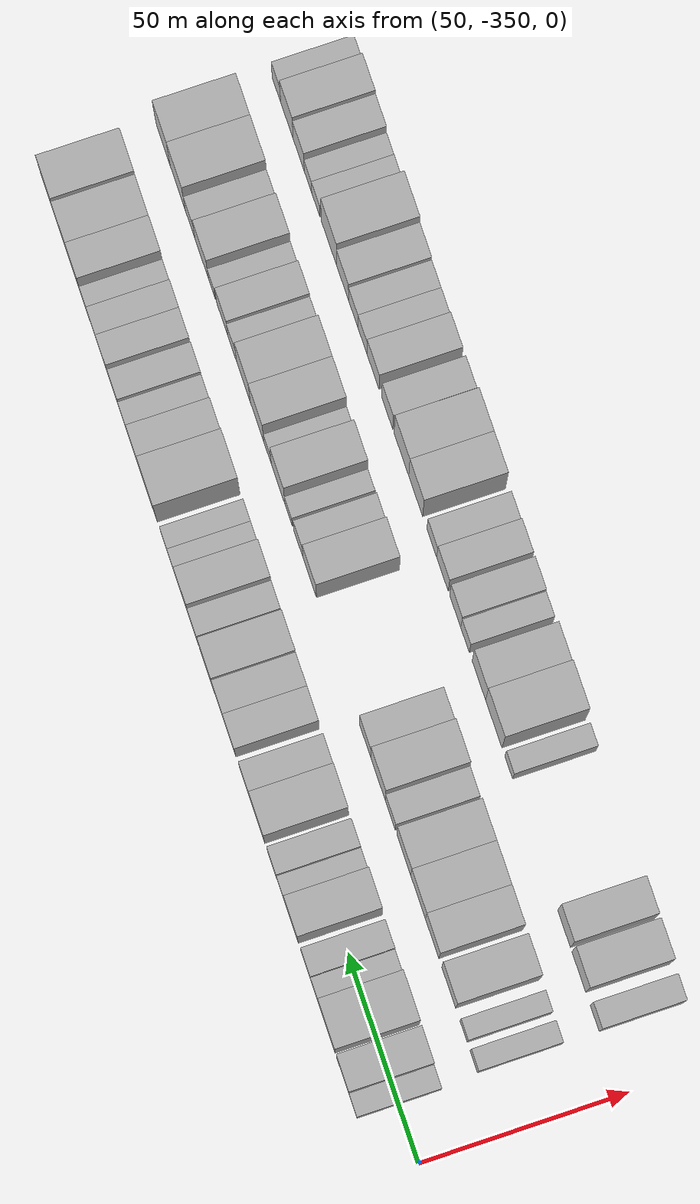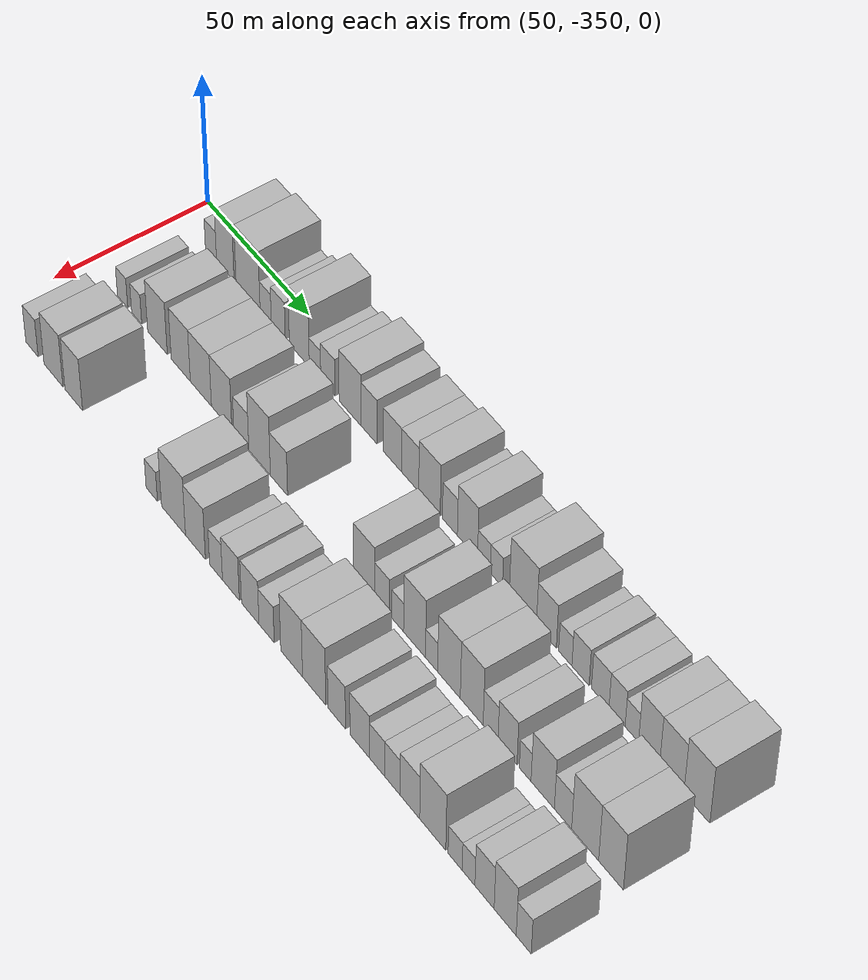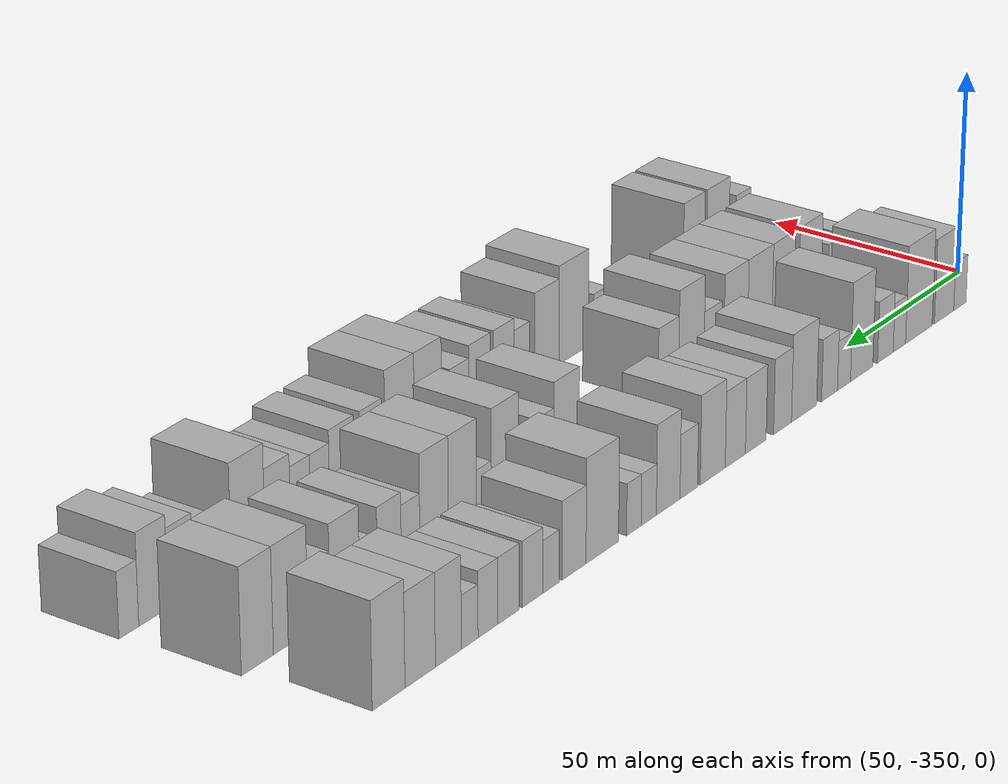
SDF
<sdf version="1.6">
 <world name="default">
  <model name="building_1">
   <static>1</static>
   <pose>50.0000 -333.1980 0 0.000000 0.000000 0.000000</pose>
   <link name="link">
    <pose>0 0 6.00 0 0 0</pose>
    <collision name="collision"><geometry><box><size>20.0000 5.6040 12.0000</size></box></geometry></collision>
    <visual name="visual">
     <cast_shadows>0</cast_shadows>
     <geometry><box><size>20.0000 5.6040 12.0000</size></box></geometry>
     <material>
      <script>
       <uri>model://HANNAS_wall/materials/scripts</uri>
       <uri>model://HANNAS_wall/materials/textures</uri>
       <name>vrc/HANNAS_wall</name>
      </script>
     </material>
    </visual>
   </link>
  </model>
  <model name="building_2">
   <static>1</static>
   <pose>50.0000 -325.9959 0 0.000000 0.000000 0.000000</pose>
   <link name="link">
    <pose>0 0 10.50 0 0 0</pose>
    <collision name="collision"><geometry><box><size>20.0000 8.8002 21.0000</size></box></geometry></collision>
    <visual name="visual">
     <cast_shadows>0</cast_shadows>
     <geometry><box><size>20.0000 8.8002 21.0000</size></box></geometry>
     <material>
      <script>
       <uri>model://HANNAS_wall/materials/scripts</uri>
       <uri>model://HANNAS_wall/materials/textures</uri>
       <name>vrc/HANNAS_wall</name>
      </script>
     </material>
    </visual>
   </link>
  </model>
  <model name="building_3">
   <static>1</static>
   <pose>50.0000 -314.6749 0 0.000000 0.000000 0.000000</pose>
   <link name="link">
    <pose>0 0 12.00 0 0 0</pose>
    <collision name="collision"><geometry><box><size>20.0000 11.8418 24.0000</size></box></geometry></collision>
    <visual name="visual">
     <cast_shadows>0</cast_shadows>
     <geometry><box><size>20.0000 11.8418 24.0000</size></box></geometry>
     <material>
      <script>
       <uri>model://HANNAS_wall/materials/scripts</uri>
       <uri>model://HANNAS_wall/materials/textures</uri>
       <name>vrc/HANNAS_wall</name>
      </script>
     </material>
    </visual>
   </link>
  </model>
  <model name="building_4">
   <static>1</static>
   <pose>50.0000 -306.0042 0 0.000000 0.000000 0.000000</pose>
   <link name="link">
    <pose>0 0 6.00 0 0 0</pose>
    <collision name="collision"><geometry><box><size>20.0000 5.4996 12.0000</size></box></geometry></collision>
    <visual name="visual">
     <cast_shadows>0</cast_shadows>
     <geometry><box><size>20.0000 5.4996 12.0000</size></box></geometry>
     <material>
      <script>
       <uri>model://HANNAS_wall/materials/scripts</uri>
       <uri>model://HANNAS_wall/materials/textures</uri>
       <name>vrc/HANNAS_wall</name>
      </script>
     </material>
    </visual>
   </link>
  </model>
  <model name="building_5">
   <static>1</static>
   <pose>50.0000 -299.8403 0 0.000000 0.000000 0.000000</pose>
   <link name="link">
    <pose>0 0 7.50 0 0 0</pose>
    <collision name="collision"><geometry><box><size>20.0000 6.8281 15.0000</size></box></geometry></collision>
    <visual name="visual">
     <cast_shadows>0</cast_shadows>
     <geometry><box><size>20.0000 6.8281 15.0000</size></box></geometry>
     <material>
      <script>
       <uri>model://HANNAS_wall/materials/scripts</uri>
       <uri>model://HANNAS_wall/materials/textures</uri>
       <name>vrc/HANNAS_wall</name>
      </script>
     </material>
    </visual>
   </link>
  </model>
  <model name="building_6">
   <static>1</static>
   <pose>50.0000 -289.6223 0 0.000000 0.000000 0.000000</pose>
   <link name="link">
    <pose>0 0 12.00 0 0 0</pose>
    <collision name="collision"><geometry><box><size>20.0000 9.6079 24.0000</size></box></geometry></collision>
    <visual name="visual">
     <cast_shadows>0</cast_shadows>
     <geometry><box><size>20.0000 9.6079 24.0000</size></box></geometry>
     <material>
      <script>
       <uri>model://HANNAS_wall/materials/scripts</uri>
       <uri>model://HANNAS_wall/materials/textures</uri>
       <name>vrc/HANNAS_wall</name>
      </script>
     </material>
    </visual>
   </link>
  </model>
  <model name="building_7">
   <static>1</static>
   <pose>50.0000 -282.0489 0 0.000000 0.000000 0.000000</pose>
   <link name="link">
    <pose>0 0 6.00 0 0 0</pose>
    <collision name="collision"><geometry><box><size>20.0000 5.5390 12.0000</size></box></geometry></collision>
    <visual name="visual">
     <cast_shadows>0</cast_shadows>
     <geometry><box><size>20.0000 5.5390 12.0000</size></box></geometry>
     <material>
      <script>
       <uri>model://HANNAS_wall/materials/scripts</uri>
       <uri>model://HANNAS_wall/materials/textures</uri>
       <name>vrc/HANNAS_wall</name>
      </script>
     </material>
    </visual>
   </link>
  </model>
  <model name="building_8">
   <static>1</static>
   <pose>50.0000 -275.9186 0 0.000000 0.000000 0.000000</pose>
   <link name="link">
    <pose>0 0 7.50 0 0 0</pose>
    <collision name="collision"><geometry><box><size>20.0000 6.7216 15.0000</size></box></geometry></collision>
    <visual name="visual">
     <cast_shadows>0</cast_shadows>
     <geometry><box><size>20.0000 6.7216 15.0000</size></box></geometry>
     <material>
      <script>
       <uri>model://HANNAS_wall/materials/scripts</uri>
       <uri>model://HANNAS_wall/materials/textures</uri>
       <name>vrc/HANNAS_wall</name>
      </script>
     </material>
    </visual>
   </link>
  </model>
  <model name="building_9">
   <static>1</static>
   <pose>50.0000 -265.3210 0 0.000000 0.000000 0.000000</pose>
   <link name="link">
    <pose>0 0 10.50 0 0 0</pose>
    <collision name="collision"><geometry><box><size>20.0000 10.4738 21.0000</size></box></geometry></collision>
    <visual name="visual">
     <cast_shadows>0</cast_shadows>
     <geometry><box><size>20.0000 10.4738 21.0000</size></box></geometry>
     <material>
      <script>
       <uri>model://HANNAS_wall/materials/scripts</uri>
       <uri>model://HANNAS_wall/materials/textures</uri>
       <name>vrc/HANNAS_wall</name>
      </script>
     </material>
    </visual>
   </link>
  </model>
  <model name="building_10">
   <static>1</static>
   <pose>50.0000 -256.4147 0 0.000000 0.000000 0.000000</pose>
   <link name="link">
    <pose>0 0 9.00 0 0 0</pose>
    <collision name="collision"><geometry><box><size>20.0000 7.3387 18.0000</size></box></geometry></collision>
    <visual name="visual">
     <cast_shadows>0</cast_shadows>
     <geometry><box><size>20.0000 7.3387 18.0000</size></box></geometry>
     <material>
      <script>
       <uri>model://HANNAS_wall/materials/scripts</uri>
       <uri>model://HANNAS_wall/materials/textures</uri>
       <name>vrc/HANNAS_wall</name>
      </script>
     </material>
    </visual>
   </link>
  </model>
  <model name="building_11">
   <static>1</static>
   <pose>50.0000 -245.5799 0 0.000000 0.000000 0.000000</pose>
   <link name="link">
    <pose>0 0 9.00 0 0 0</pose>
    <collision name="collision"><geometry><box><size>20.0000 8.3308 18.0000</size></box></geometry></collision>
    <visual name="visual">
     <cast_shadows>0</cast_shadows>
     <geometry><box><size>20.0000 8.3308 18.0000</size></box></geometry>
     <material>
      <script>
       <uri>model://HANNAS_wall/materials/scripts</uri>
       <uri>model://HANNAS_wall/materials/textures</uri>
       <name>vrc/HANNAS_wall</name>
      </script>
     </material>
    </visual>
   </link>
  </model>
  <model name="building_12">
   <static>1</static>
   <pose>50.0000 -237.4106 0 0.000000 0.000000 0.000000</pose>
   <link name="link">
    <pose>0 0 9.00 0 0 0</pose>
    <collision name="collision"><geometry><box><size>20.0000 8.0078 18.0000</size></box></geometry></collision>
    <visual name="visual">
     <cast_shadows>0</cast_shadows>
     <geometry><box><size>20.0000 8.0078 18.0000</size></box></geometry>
     <material>
      <script>
       <uri>model://HANNAS_wall/materials/scripts</uri>
       <uri>model://HANNAS_wall/materials/textures</uri>
       <name>vrc/HANNAS_wall</name>
      </script>
     </material>
    </visual>
   </link>
  </model>
  <model name="building_13">
   <static>1</static>
   <pose>50.0000 -228.5051 0 0.000000 0.000000 0.000000</pose>
   <link name="link">
    <pose>0 0 10.50 0 0 0</pose>
    <collision name="collision"><geometry><box><size>20.0000 9.8033 21.0000</size></box></geometry></collision>
    <visual name="visual">
     <cast_shadows>0</cast_shadows>
     <geometry><box><size>20.0000 9.8033 21.0000</size></box></geometry>
     <material>
      <script>
       <uri>model://HANNAS_wall/materials/scripts</uri>
       <uri>model://HANNAS_wall/materials/textures</uri>
       <name>vrc/HANNAS_wall</name>
      </script>
     </material>
    </visual>
   </link>
  </model>
  <model name="building_14">
   <static>1</static>
   <pose>50.0000 -219.2207 0 0.000000 0.000000 0.000000</pose>
   <link name="link">
    <pose>0 0 7.50 0 0 0</pose>
    <collision name="collision"><geometry><box><size>20.0000 6.7656 15.0000</size></box></geometry></collision>
    <visual name="visual">
     <cast_shadows>0</cast_shadows>
     <geometry><box><size>20.0000 6.7656 15.0000</size></box></geometry>
     <material>
      <script>
       <uri>model://HANNAS_wall/materials/scripts</uri>
       <uri>model://HANNAS_wall/materials/textures</uri>
       <name>vrc/HANNAS_wall</name>
      </script>
     </material>
    </visual>
   </link>
  </model>
  <model name="building_15">
   <static>1</static>
   <pose>50.0000 -211.3232 0 0.000000 0.000000 0.000000</pose>
   <link name="link">
    <pose>0 0 10.50 0 0 0</pose>
    <collision name="collision"><geometry><box><size>20.0000 9.0295 21.0000</size></box></geometry></collision>
    <visual name="visual">
     <cast_shadows>0</cast_shadows>
     <geometry><box><size>20.0000 9.0295 21.0000</size></box></geometry>
     <material>
      <script>
       <uri>model://HANNAS_wall/materials/scripts</uri>
       <uri>model://HANNAS_wall/materials/textures</uri>
       <name>vrc/HANNAS_wall</name>
      </script>
     </material>
    </visual>
   </link>
  </model>
  <model name="building_16">
   <static>1</static>
   <pose>50.0000 -203.9540 0 0.000000 0.000000 0.000000</pose>
   <link name="link">
    <pose>0 0 6.00 0 0 0</pose>
    <collision name="collision"><geometry><box><size>20.0000 5.7088 12.0000</size></box></geometry></collision>
    <visual name="visual">
     <cast_shadows>0</cast_shadows>
     <geometry><box><size>20.0000 5.7088 12.0000</size></box></geometry>
     <material>
      <script>
       <uri>model://HANNAS_wall/materials/scripts</uri>
       <uri>model://HANNAS_wall/materials/textures</uri>
       <name>vrc/HANNAS_wall</name>
      </script>
     </material>
    </visual>
   </link>
  </model>
  <model name="building_17">
   <static>1</static>
   <pose>50.0000 -198.4020 0 0.000000 0.000000 0.000000</pose>
   <link name="link">
    <pose>0 0 6.00 0 0 0</pose>
    <collision name="collision"><geometry><box><size>20.0000 5.3952 12.0000</size></box></geometry></collision>
    <visual name="visual">
     <cast_shadows>0</cast_shadows>
     <geometry><box><size>20.0000 5.3952 12.0000</size></box></geometry>
     <material>
      <script>
       <uri>model://HANNAS_wall/materials/scripts</uri>
       <uri>model://HANNAS_wall/materials/textures</uri>
       <name>vrc/HANNAS_wall</name>
      </script>
     </material>
    </visual>
   </link>
  </model>
  <model name="building_18">
   <static>1</static>
   <pose>50.0000 -186.7552 0 0.000000 0.000000 0.000000</pose>
   <link name="link">
    <pose>0 0 12.00 0 0 0</pose>
    <collision name="collision"><geometry><box><size>20.0000 11.8984 24.0000</size></box></geometry></collision>
    <visual name="visual">
     <cast_shadows>0</cast_shadows>
     <geometry><box><size>20.0000 11.8984 24.0000</size></box></geometry>
     <material>
      <script>
       <uri>model://HANNAS_wall/materials/scripts</uri>
       <uri>model://HANNAS_wall/materials/textures</uri>
       <name>vrc/HANNAS_wall</name>
      </script>
     </material>
    </visual>
   </link>
  </model>
  <model name="building_19">
   <static>1</static>
   <pose>50.0000 -176.4865 0 0.000000 0.000000 0.000000</pose>
   <link name="link">
    <pose>0 0 9.00 0 0 0</pose>
    <collision name="collision"><geometry><box><size>20.0000 8.6390 18.0000</size></box></geometry></collision>
    <visual name="visual">
     <cast_shadows>0</cast_shadows>
     <geometry><box><size>20.0000 8.6390 18.0000</size></box></geometry>
     <material>
      <script>
       <uri>model://HANNAS_wall/materials/scripts</uri>
       <uri>model://HANNAS_wall/materials/textures</uri>
       <name>vrc/HANNAS_wall</name>
      </script>
     </material>
    </visual>
   </link>
  </model>
  <model name="building_20">
   <static>1</static>
   <pose>50.0000 -168.3117 0 0.000000 0.000000 0.000000</pose>
   <link name="link">
    <pose>0 0 6.00 0 0 0</pose>
    <collision name="collision"><geometry><box><size>20.0000 5.7107 12.0000</size></box></geometry></collision>
    <visual name="visual">
     <cast_shadows>0</cast_shadows>
     <geometry><box><size>20.0000 5.7107 12.0000</size></box></geometry>
     <material>
      <script>
       <uri>model://HANNAS_wall/materials/scripts</uri>
       <uri>model://HANNAS_wall/materials/textures</uri>
       <name>vrc/HANNAS_wall</name>
      </script>
     </material>
    </visual>
   </link>
  </model>
  <model name="building_21">
   <static>1</static>
   <pose>50.0000 -161.7797 0 0.000000 0.000000 0.000000</pose>
   <link name="link">
    <pose>0 0 7.50 0 0 0</pose>
    <collision name="collision"><geometry><box><size>20.0000 7.3533 15.0000</size></box></geometry></collision>
    <visual name="visual">
     <cast_shadows>0</cast_shadows>
     <geometry><box><size>20.0000 7.3533 15.0000</size></box></geometry>
     <material>
      <script>
       <uri>model://HANNAS_wall/materials/scripts</uri>
       <uri>model://HANNAS_wall/materials/textures</uri>
       <name>vrc/HANNAS_wall</name>
      </script>
     </material>
    </visual>
   </link>
  </model>
  <model name="building_22">
   <static>1</static>
   <pose>50.0000 -153.3849 0 0.000000 0.000000 0.000000</pose>
   <link name="link">
    <pose>0 0 7.50 0 0 0</pose>
    <collision name="collision"><geometry><box><size>20.0000 7.4364 15.0000</size></box></geometry></collision>
    <visual name="visual">
     <cast_shadows>0</cast_shadows>
     <geometry><box><size>20.0000 7.4364 15.0000</size></box></geometry>
     <material>
      <script>
       <uri>model://HANNAS_wall/materials/scripts</uri>
       <uri>model://HANNAS_wall/materials/textures</uri>
       <name>vrc/HANNAS_wall</name>
      </script>
     </material>
    </visual>
   </link>
  </model>
  <model name="building_23">
   <static>1</static>
   <pose>50.0000 -146.2702 0 0.000000 0.000000 0.000000</pose>
   <link name="link">
    <pose>0 0 7.50 0 0 0</pose>
    <collision name="collision"><geometry><box><size>20.0000 6.7929 15.0000</size></box></geometry></collision>
    <visual name="visual">
     <cast_shadows>0</cast_shadows>
     <geometry><box><size>20.0000 6.7929 15.0000</size></box></geometry>
     <material>
      <script>
       <uri>model://HANNAS_wall/materials/scripts</uri>
       <uri>model://HANNAS_wall/materials/textures</uri>
       <name>vrc/HANNAS_wall</name>
      </script>
     </material>
    </visual>
   </link>
  </model>
  <model name="building_24">
   <static>1</static>
   <pose>50.0000 -140.0575 0 0.000000 0.000000 0.000000</pose>
   <link name="link">
    <pose>0 0 6.00 0 0 0</pose>
    <collision name="collision"><geometry><box><size>20.0000 5.6326 12.0000</size></box></geometry></collision>
    <visual name="visual">
     <cast_shadows>0</cast_shadows>
     <geometry><box><size>20.0000 5.6326 12.0000</size></box></geometry>
     <material>
      <script>
       <uri>model://HANNAS_wall/materials/scripts</uri>
       <uri>model://HANNAS_wall/materials/textures</uri>
       <name>vrc/HANNAS_wall</name>
      </script>
     </material>
    </visual>
   </link>
  </model>
  <model name="building_25">
   <static>1</static>
   <pose>50.0000 -132.8841 0 0.000000 0.000000 0.000000</pose>
   <link name="link">
    <pose>0 0 10.50 0 0 0</pose>
    <collision name="collision"><geometry><box><size>20.0000 8.7143 21.0000</size></box></geometry></collision>
    <visual name="visual">
     <cast_shadows>0</cast_shadows>
     <geometry><box><size>20.0000 8.7143 21.0000</size></box></geometry>
     <material>
      <script>
       <uri>model://HANNAS_wall/materials/scripts</uri>
       <uri>model://HANNAS_wall/materials/textures</uri>
       <name>vrc/HANNAS_wall</name>
      </script>
     </material>
    </visual>
   </link>
  </model>
  <model name="building_26">
   <static>1</static>
   <pose>50.0000 -123.5216 0 0.000000 0.000000 0.000000</pose>
   <link name="link">
    <pose>0 0 10.50 0 0 0</pose>
    <collision name="collision"><geometry><box><size>20.0000 10.0106 21.0000</size></box></geometry></collision>
    <visual name="visual">
     <cast_shadows>0</cast_shadows>
     <geometry><box><size>20.0000 10.0106 21.0000</size></box></geometry>
     <material>
      <script>
       <uri>model://HANNAS_wall/materials/scripts</uri>
       <uri>model://HANNAS_wall/materials/textures</uri>
       <name>vrc/HANNAS_wall</name>
      </script>
     </material>
    </visual>
   </link>
  </model>
  <model name="building_27">
   <static>1</static>
   <pose>50.0000 -113.2115 0 0.000000 0.000000 0.000000</pose>
   <link name="link">
    <pose>0 0 12.00 0 0 0</pose>
    <collision name="collision"><geometry><box><size>20.0000 10.6096 24.0000</size></box></geometry></collision>
    <visual name="visual">
     <cast_shadows>0</cast_shadows>
     <geometry><box><size>20.0000 10.6096 24.0000</size></box></geometry>
     <material>
      <script>
       <uri>model://HANNAS_wall/materials/scripts</uri>
       <uri>model://HANNAS_wall/materials/textures</uri>
       <name>vrc/HANNAS_wall</name>
      </script>
     </material>
    </visual>
   </link>
  </model>
  <model name="building_74">
   <static>1</static>
   <pose>79.0000 -332.3894 0 0.000000 0.000000 0.000000</pose>
   <link name="link">
    <pose>0 0 6.00 0 0 0</pose>
    <collision name="collision"><geometry><box><size>20.0000 5.2212 12.0000</size></box></geometry></collision>
    <visual name="visual">
     <cast_shadows>0</cast_shadows>
     <geometry><box><size>20.0000 5.2212 12.0000</size></box></geometry>
     <material>
      <script>
       <uri>model://HANNAS_wall/materials/scripts</uri>
       <uri>model://HANNAS_wall/materials/textures</uri>
       <name>vrc/HANNAS_wall</name>
      </script>
     </material>
    </visual>
   </link>
  </model>
  <model name="building_75">
   <static>1</static>
   <pose>79.0000 -325.2303 0 0.000000 0.000000 0.000000</pose>
   <link name="link">
    <pose>0 0 6.00 0 0 0</pose>
    <collision name="collision"><geometry><box><size>20.0000 5.0970 12.0000</size></box></geometry></collision>
    <visual name="visual">
     <cast_shadows>0</cast_shadows>
     <geometry><box><size>20.0000 5.0970 12.0000</size></box></geometry>
     <material>
      <script>
       <uri>model://HANNAS_wall/materials/scripts</uri>
       <uri>model://HANNAS_wall/materials/textures</uri>
       <name>vrc/HANNAS_wall</name>
      </script>
     </material>
    </visual>
   </link>
  </model>
  <model name="building_76">
   <static>1</static>
   <pose>79.0000 -314.7709 0 0.000000 0.000000 0.000000</pose>
   <link name="link">
    <pose>0 0 10.50 0 0 0</pose>
    <collision name="collision"><geometry><box><size>20.0000 9.8219 21.0000</size></box></geometry></collision>
    <visual name="visual">
     <cast_shadows>0</cast_shadows>
     <geometry><box><size>20.0000 9.8219 21.0000</size></box></geometry>
     <material>
      <script>
       <uri>model://HANNAS_wall/materials/scripts</uri>
       <uri>model://HANNAS_wall/materials/textures</uri>
       <name>vrc/HANNAS_wall</name>
      </script>
     </material>
    </visual>
   </link>
  </model>
  <model name="building_77">
   <static>1</static>
   <pose>79.0000 -303.1445 0 0.000000 0.000000 0.000000</pose>
   <link name="link">
    <pose>0 0 10.50 0 0 0</pose>
    <collision name="collision"><geometry><box><size>20.0000 9.4309 21.0000</size></box></geometry></collision>
    <visual name="visual">
     <cast_shadows>0</cast_shadows>
     <geometry><box><size>20.0000 9.4309 21.0000</size></box></geometry>
     <material>
      <script>
       <uri>model://HANNAS_wall/materials/scripts</uri>
       <uri>model://HANNAS_wall/materials/textures</uri>
       <name>vrc/HANNAS_wall</name>
      </script>
     </material>
    </visual>
   </link>
  </model>
  <model name="building_78">
   <static>1</static>
   <pose>79.0000 -293.2506 0 0.000000 0.000000 0.000000</pose>
   <link name="link">
    <pose>0 0 10.50 0 0 0</pose>
    <collision name="collision"><geometry><box><size>20.0000 10.3570 21.0000</size></box></geometry></collision>
    <visual name="visual">
     <cast_shadows>0</cast_shadows>
     <geometry><box><size>20.0000 10.3570 21.0000</size></box></geometry>
     <material>
      <script>
       <uri>model://HANNAS_wall/materials/scripts</uri>
       <uri>model://HANNAS_wall/materials/textures</uri>
       <name>vrc/HANNAS_wall</name>
      </script>
     </material>
    </visual>
   </link>
  </model>
  <model name="building_79">
   <static>1</static>
   <pose>79.0000 -283.1118 0 0.000000 0.000000 0.000000</pose>
   <link name="link">
    <pose>0 0 10.50 0 0 0</pose>
    <collision name="collision"><geometry><box><size>20.0000 9.9207 21.0000</size></box></geometry></collision>
    <visual name="visual">
     <cast_shadows>0</cast_shadows>
     <geometry><box><size>20.0000 9.9207 21.0000</size></box></geometry>
     <material>
      <script>
       <uri>model://HANNAS_wall/materials/scripts</uri>
       <uri>model://HANNAS_wall/materials/textures</uri>
       <name>vrc/HANNAS_wall</name>
      </script>
     </material>
    </visual>
   </link>
  </model>
  <model name="building_80">
   <static>1</static>
   <pose>79.0000 -273.5602 0 0.000000 0.000000 0.000000</pose>
   <link name="link">
    <pose>0 0 7.50 0 0 0</pose>
    <collision name="collision"><geometry><box><size>20.0000 7.1824 15.0000</size></box></geometry></collision>
    <visual name="visual">
     <cast_shadows>0</cast_shadows>
     <geometry><box><size>20.0000 7.1824 15.0000</size></box></geometry>
     <material>
      <script>
       <uri>model://HANNAS_wall/materials/scripts</uri>
       <uri>model://HANNAS_wall/materials/textures</uri>
       <name>vrc/HANNAS_wall</name>
      </script>
     </material>
    </visual>
   </link>
  </model>
  <model name="building_81">
   <static>1</static>
   <pose>79.0000 -264.8209 0 0.000000 0.000000 0.000000</pose>
   <link name="link">
    <pose>0 0 12.00 0 0 0</pose>
    <collision name="collision"><geometry><box><size>20.0000 10.2963 24.0000</size></box></geometry></collision>
    <visual name="visual">
     <cast_shadows>0</cast_shadows>
     <geometry><box><size>20.0000 10.2963 24.0000</size></box></geometry>
     <material>
      <script>
       <uri>model://HANNAS_wall/materials/scripts</uri>
       <uri>model://HANNAS_wall/materials/textures</uri>
       <name>vrc/HANNAS_wall</name>
      </script>
     </material>
    </visual>
   </link>
  </model>
  <model name="building_82">
   <static>1</static>
   <pose>79.0000 -255.5944 0 0.000000 0.000000 0.000000</pose>
   <link name="link">
    <pose>0 0 9.00 0 0 0</pose>
    <collision name="collision"><geometry><box><size>20.0000 8.1567 18.0000</size></box></geometry></collision>
    <visual name="visual">
     <cast_shadows>0</cast_shadows>
     <geometry><box><size>20.0000 8.1567 18.0000</size></box></geometry>
     <material>
      <script>
       <uri>model://HANNAS_wall/materials/scripts</uri>
       <uri>model://HANNAS_wall/materials/textures</uri>
       <name>vrc/HANNAS_wall</name>
      </script>
     </material>
    </visual>
   </link>
  </model>
  <model name="building_83">
   <static>1</static>
   <pose>79.0000 -216.0811 0 0.000000 0.000000 0.000000</pose>
   <link name="link">
    <pose>0 0 10.50 0 0 0</pose>
    <collision name="collision"><geometry><box><size>20.0000 9.6233 21.0000</size></box></geometry></collision>
    <visual name="visual">
     <cast_shadows>0</cast_shadows>
     <geometry><box><size>20.0000 9.6233 21.0000</size></box></geometry>
     <material>
      <script>
       <uri>model://HANNAS_wall/materials/scripts</uri>
       <uri>model://HANNAS_wall/materials/textures</uri>
       <name>vrc/HANNAS_wall</name>
      </script>
     </material>
    </visual>
   </link>
  </model>
  <model name="building_84">
   <static>1</static>
   <pose>79.0000 -207.8913 0 0.000000 0.000000 0.000000</pose>
   <link name="link">
    <pose>0 0 7.50 0 0 0</pose>
    <collision name="collision"><geometry><box><size>20.0000 6.7563 15.0000</size></box></geometry></collision>
    <visual name="visual">
     <cast_shadows>0</cast_shadows>
     <geometry><box><size>20.0000 6.7563 15.0000</size></box></geometry>
     <material>
      <script>
       <uri>model://HANNAS_wall/materials/scripts</uri>
       <uri>model://HANNAS_wall/materials/textures</uri>
       <name>vrc/HANNAS_wall</name>
      </script>
     </material>
    </visual>
   </link>
  </model>
  <model name="building_85">
   <static>1</static>
   <pose>79.0000 -200.8681 0 0.000000 0.000000 0.000000</pose>
   <link name="link">
    <pose>0 0 6.00 0 0 0</pose>
    <collision name="collision"><geometry><box><size>20.0000 5.2901 12.0000</size></box></geometry></collision>
    <visual name="visual">
     <cast_shadows>0</cast_shadows>
     <geometry><box><size>20.0000 5.2901 12.0000</size></box></geometry>
     <material>
      <script>
       <uri>model://HANNAS_wall/materials/scripts</uri>
       <uri>model://HANNAS_wall/materials/textures</uri>
       <name>vrc/HANNAS_wall</name>
      </script>
     </material>
    </visual>
   </link>
  </model>
  <model name="building_86">
   <static>1</static>
   <pose>79.0000 -193.3429 0 0.000000 0.000000 0.000000</pose>
   <link name="link">
    <pose>0 0 12.00 0 0 0</pose>
    <collision name="collision"><geometry><box><size>20.0000 9.7604 24.0000</size></box></geometry></collision>
    <visual name="visual">
     <cast_shadows>0</cast_shadows>
     <geometry><box><size>20.0000 9.7604 24.0000</size></box></geometry>
     <material>
      <script>
       <uri>model://HANNAS_wall/materials/scripts</uri>
       <uri>model://HANNAS_wall/materials/textures</uri>
       <name>vrc/HANNAS_wall</name>
      </script>
     </material>
    </visual>
   </link>
  </model>
  <model name="building_87">
   <static>1</static>
   <pose>79.0000 -185.7781 0 0.000000 0.000000 0.000000</pose>
   <link name="link">
    <pose>0 0 6.00 0 0 0</pose>
    <collision name="collision"><geometry><box><size>20.0000 5.3691 12.0000</size></box></geometry></collision>
    <visual name="visual">
     <cast_shadows>0</cast_shadows>
     <geometry><box><size>20.0000 5.3691 12.0000</size></box></geometry>
     <material>
      <script>
       <uri>model://HANNAS_wall/materials/scripts</uri>
       <uri>model://HANNAS_wall/materials/textures</uri>
       <name>vrc/HANNAS_wall</name>
      </script>
     </material>
    </visual>
   </link>
  </model>
  <model name="building_88">
   <static>1</static>
   <pose>79.0000 -178.1216 0 0.000000 0.000000 0.000000</pose>
   <link name="link">
    <pose>0 0 12.00 0 0 0</pose>
    <collision name="collision"><geometry><box><size>20.0000 9.9440 24.0000</size></box></geometry></collision>
    <visual name="visual">
     <cast_shadows>0</cast_shadows>
     <geometry><box><size>20.0000 9.9440 24.0000</size></box></geometry>
     <material>
      <script>
       <uri>model://HANNAS_wall/materials/scripts</uri>
       <uri>model://HANNAS_wall/materials/textures</uri>
       <name>vrc/HANNAS_wall</name>
      </script>
     </material>
    </visual>
   </link>
  </model>
  <model name="building_89">
   <static>1</static>
   <pose>79.0000 -168.1825 0 0.000000 0.000000 0.000000</pose>
   <link name="link">
    <pose>0 0 12.00 0 0 0</pose>
    <collision name="collision"><geometry><box><size>20.0000 9.9342 24.0000</size></box></geometry></collision>
    <visual name="visual">
     <cast_shadows>0</cast_shadows>
     <geometry><box><size>20.0000 9.9342 24.0000</size></box></geometry>
     <material>
      <script>
       <uri>model://HANNAS_wall/materials/scripts</uri>
       <uri>model://HANNAS_wall/materials/textures</uri>
       <name>vrc/HANNAS_wall</name>
      </script>
     </material>
    </visual>
   </link>
  </model>
  <model name="building_90">
   <static>1</static>
   <pose>79.0000 -160.0171 0 0.000000 0.000000 0.000000</pose>
   <link name="link">
    <pose>0 0 7.50 0 0 0</pose>
    <collision name="collision"><geometry><box><size>20.0000 6.3967 15.0000</size></box></geometry></collision>
    <visual name="visual">
     <cast_shadows>0</cast_shadows>
     <geometry><box><size>20.0000 6.3967 15.0000</size></box></geometry>
     <material>
      <script>
       <uri>model://HANNAS_wall/materials/scripts</uri>
       <uri>model://HANNAS_wall/materials/textures</uri>
       <name>vrc/HANNAS_wall</name>
      </script>
     </material>
    </visual>
   </link>
  </model>
  <model name="building_91">
   <static>1</static>
   <pose>79.0000 -152.7479 0 0.000000 0.000000 0.000000</pose>
   <link name="link">
    <pose>0 0 9.00 0 0 0</pose>
    <collision name="collision"><geometry><box><size>20.0000 8.1417 18.0000</size></box></geometry></collision>
    <visual name="visual">
     <cast_shadows>0</cast_shadows>
     <geometry><box><size>20.0000 8.1417 18.0000</size></box></geometry>
     <material>
      <script>
       <uri>model://HANNAS_wall/materials/scripts</uri>
       <uri>model://HANNAS_wall/materials/textures</uri>
       <name>vrc/HANNAS_wall</name>
      </script>
     </material>
    </visual>
   </link>
  </model>
  <model name="building_92">
   <static>1</static>
   <pose>79.0000 -145.1891 0 0.000000 0.000000 0.000000</pose>
   <link name="link">
    <pose>0 0 6.00 0 0 0</pose>
    <collision name="collision"><geometry><box><size>20.0000 4.9758 12.0000</size></box></geometry></collision>
    <visual name="visual">
     <cast_shadows>0</cast_shadows>
     <geometry><box><size>20.0000 4.9758 12.0000</size></box></geometry>
     <material>
      <script>
       <uri>model://HANNAS_wall/materials/scripts</uri>
       <uri>model://HANNAS_wall/materials/textures</uri>
       <name>vrc/HANNAS_wall</name>
      </script>
     </material>
    </visual>
   </link>
  </model>
  <model name="building_93">
   <static>1</static>
   <pose>79.0000 -137.7772 0 0.000000 0.000000 0.000000</pose>
   <link name="link">
    <pose>0 0 10.50 0 0 0</pose>
    <collision name="collision"><geometry><box><size>20.0000 9.8479 21.0000</size></box></geometry></collision>
    <visual name="visual">
     <cast_shadows>0</cast_shadows>
     <geometry><box><size>20.0000 9.8479 21.0000</size></box></geometry>
     <material>
      <script>
       <uri>model://HANNAS_wall/materials/scripts</uri>
       <uri>model://HANNAS_wall/materials/textures</uri>
       <name>vrc/HANNAS_wall</name>
      </script>
     </material>
    </visual>
   </link>
  </model>
  <model name="building_94">
   <static>1</static>
   <pose>79.0000 -129.2426 0 0.000000 0.000000 0.000000</pose>
   <link name="link">
    <pose>0 0 7.50 0 0 0</pose>
    <collision name="collision"><geometry><box><size>20.0000 7.2213 15.0000</size></box></geometry></collision>
    <visual name="visual">
     <cast_shadows>0</cast_shadows>
     <geometry><box><size>20.0000 7.2213 15.0000</size></box></geometry>
     <material>
      <script>
       <uri>model://HANNAS_wall/materials/scripts</uri>
       <uri>model://HANNAS_wall/materials/textures</uri>
       <name>vrc/HANNAS_wall</name>
      </script>
     </material>
    </visual>
   </link>
  </model>
  <model name="building_95">
   <static>1</static>
   <pose>79.0000 -120.0492 0 0.000000 0.000000 0.000000</pose>
   <link name="link">
    <pose>0 0 12.00 0 0 0</pose>
    <collision name="collision"><geometry><box><size>20.0000 11.1656 24.0000</size></box></geometry></collision>
    <visual name="visual">
     <cast_shadows>0</cast_shadows>
     <geometry><box><size>20.0000 11.1656 24.0000</size></box></geometry>
     <material>
      <script>
       <uri>model://HANNAS_wall/materials/scripts</uri>
       <uri>model://HANNAS_wall/materials/textures</uri>
       <name>vrc/HANNAS_wall</name>
      </script>
     </material>
    </visual>
   </link>
  </model>
  <model name="building_96">
   <static>1</static>
   <pose>79.0000 -109.3772 0 0.000000 0.000000 0.000000</pose>
   <link name="link">
    <pose>0 0 12.00 0 0 0</pose>
    <collision name="collision"><geometry><box><size>20.0000 10.1784 24.0000</size></box></geometry></collision>
    <visual name="visual">
     <cast_shadows>0</cast_shadows>
     <geometry><box><size>20.0000 10.1784 24.0000</size></box></geometry>
     <material>
      <script>
       <uri>model://HANNAS_wall/materials/scripts</uri>
       <uri>model://HANNAS_wall/materials/textures</uri>
       <name>vrc/HANNAS_wall</name>
      </script>
     </material>
    </visual>
   </link>
  </model>
  <model name="building_146">
   <static>1</static>
   <pose>108.0000 -331.8481 0 0.000000 0.000000 0.000000</pose>
   <link name="link">
    <pose>0 0 7.50 0 0 0</pose>
    <collision name="collision"><geometry><box><size>20.0000 6.3038 15.0000</size></box></geometry></collision>
    <visual name="visual">
     <cast_shadows>0</cast_shadows>
     <geometry><box><size>20.0000 6.3038 15.0000</size></box></geometry>
     <material>
      <script>
       <uri>model://HANNAS_wall/materials/scripts</uri>
       <uri>model://HANNAS_wall/materials/textures</uri>
       <name>vrc/HANNAS_wall</name>
      </script>
     </material>
    </visual>
   </link>
  </model>
  <model name="building_147">
   <static>1</static>
   <pose>108.0000 -320.8477 0 0.000000 0.000000 0.000000</pose>
   <link name="link">
    <pose>0 0 10.50 0 0 0</pose>
    <collision name="collision"><geometry><box><size>20.0000 9.6969 21.0000</size></box></geometry></collision>
    <visual name="visual">
     <cast_shadows>0</cast_shadows>
     <geometry><box><size>20.0000 9.6969 21.0000</size></box></geometry>
     <material>
      <script>
       <uri>model://HANNAS_wall/materials/scripts</uri>
       <uri>model://HANNAS_wall/materials/textures</uri>
       <name>vrc/HANNAS_wall</name>
      </script>
     </material>
    </visual>
   </link>
  </model>
  <model name="building_148">
   <static>1</static>
   <pose>108.0000 -310.5505 0 0.000000 0.000000 0.000000</pose>
   <link name="link">
    <pose>0 0 10.50 0 0 0</pose>
    <collision name="collision"><geometry><box><size>20.0000 8.8976 21.0000</size></box></geometry></collision>
    <visual name="visual">
     <cast_shadows>0</cast_shadows>
     <geometry><box><size>20.0000 8.8976 21.0000</size></box></geometry>
     <material>
      <script>
       <uri>model://HANNAS_wall/materials/scripts</uri>
       <uri>model://HANNAS_wall/materials/textures</uri>
       <name>vrc/HANNAS_wall</name>
      </script>
     </material>
    </visual>
   </link>
  </model>
  <model name="building_149">
   <static>1</static>
   <pose>108.0000 -271.8598 0 0.000000 0.000000 0.000000</pose>
   <link name="link">
    <pose>0 0 6.00 0 0 0</pose>
    <collision name="collision"><geometry><box><size>20.0000 5.4946 12.0000</size></box></geometry></collision>
    <visual name="visual">
     <cast_shadows>0</cast_shadows>
     <geometry><box><size>20.0000 5.4946 12.0000</size></box></geometry>
     <material>
      <script>
       <uri>model://HANNAS_wall/materials/scripts</uri>
       <uri>model://HANNAS_wall/materials/textures</uri>
       <name>vrc/HANNAS_wall</name>
      </script>
     </material>
    </visual>
   </link>
  </model>
  <model name="building_150">
   <static>1</static>
   <pose>108.0000 -261.3294 0 0.000000 0.000000 0.000000</pose>
   <link name="link">
    <pose>0 0 12.00 0 0 0</pose>
    <collision name="collision"><geometry><box><size>20.0000 11.5663 24.0000</size></box></geometry></collision>
    <visual name="visual">
     <cast_shadows>0</cast_shadows>
     <geometry><box><size>20.0000 11.5663 24.0000</size></box></geometry>
     <material>
      <script>
       <uri>model://HANNAS_wall/materials/scripts</uri>
       <uri>model://HANNAS_wall/materials/textures</uri>
       <name>vrc/HANNAS_wall</name>
      </script>
     </material>
    </visual>
   </link>
  </model>
  <model name="building_151">
   <static>1</static>
   <pose>108.0000 -250.7956 0 0.000000 0.000000 0.000000</pose>
   <link name="link">
    <pose>0 0 10.50 0 0 0</pose>
    <collision name="collision"><geometry><box><size>20.0000 9.5014 21.0000</size></box></geometry></collision>
    <visual name="visual">
     <cast_shadows>0</cast_shadows>
     <geometry><box><size>20.0000 9.5014 21.0000</size></box></geometry>
     <material>
      <script>
       <uri>model://HANNAS_wall/materials/scripts</uri>
       <uri>model://HANNAS_wall/materials/textures</uri>
       <name>vrc/HANNAS_wall</name>
      </script>
     </material>
    </visual>
   </link>
  </model>
  <model name="building_152">
   <static>1</static>
   <pose>108.0000 -241.0127 0 0.000000 0.000000 0.000000</pose>
   <link name="link">
    <pose>0 0 7.50 0 0 0</pose>
    <collision name="collision"><geometry><box><size>20.0000 6.0644 15.0000</size></box></geometry></collision>
    <visual name="visual">
     <cast_shadows>0</cast_shadows>
     <geometry><box><size>20.0000 6.0644 15.0000</size></box></geometry>
     <material>
      <script>
       <uri>model://HANNAS_wall/materials/scripts</uri>
       <uri>model://HANNAS_wall/materials/textures</uri>
       <name>vrc/HANNAS_wall</name>
      </script>
     </material>
    </visual>
   </link>
  </model>
  <model name="building_153">
   <static>1</static>
   <pose>108.0000 -234.0194 0 0.000000 0.000000 0.000000</pose>
   <link name="link">
    <pose>0 0 9.00 0 0 0</pose>
    <collision name="collision"><geometry><box><size>20.0000 7.9222 18.0000</size></box></geometry></collision>
    <visual name="visual">
     <cast_shadows>0</cast_shadows>
     <geometry><box><size>20.0000 7.9222 18.0000</size></box></geometry>
     <material>
      <script>
       <uri>model://HANNAS_wall/materials/scripts</uri>
       <uri>model://HANNAS_wall/materials/textures</uri>
       <name>vrc/HANNAS_wall</name>
      </script>
     </material>
    </visual>
   </link>
  </model>
  <model name="building_154">
   <static>1</static>
   <pose>108.0000 -224.9918 0 0.000000 0.000000 0.000000</pose>
   <link name="link">
    <pose>0 0 9.00 0 0 0</pose>
    <collision name="collision"><geometry><box><size>20.0000 8.1330 18.0000</size></box></geometry></collision>
    <visual name="visual">
     <cast_shadows>0</cast_shadows>
     <geometry><box><size>20.0000 8.1330 18.0000</size></box></geometry>
     <material>
      <script>
       <uri>model://HANNAS_wall/materials/scripts</uri>
       <uri>model://HANNAS_wall/materials/textures</uri>
       <name>vrc/HANNAS_wall</name>
      </script>
     </material>
    </visual>
   </link>
  </model>
  <model name="building_155">
   <static>1</static>
   <pose>108.0000 -217.4187 0 0.000000 0.000000 0.000000</pose>
   <link name="link">
    <pose>0 0 7.50 0 0 0</pose>
    <collision name="collision"><geometry><box><size>20.0000 7.0130 15.0000</size></box></geometry></collision>
    <visual name="visual">
     <cast_shadows>0</cast_shadows>
     <geometry><box><size>20.0000 7.0130 15.0000</size></box></geometry>
     <material>
      <script>
       <uri>model://HANNAS_wall/materials/scripts</uri>
       <uri>model://HANNAS_wall/materials/textures</uri>
       <name>vrc/HANNAS_wall</name>
      </script>
     </material>
    </visual>
   </link>
  </model>
  <model name="building_156">
   <static>1</static>
   <pose>108.0000 -205.9382 0 0.000000 0.000000 0.000000</pose>
   <link name="link">
    <pose>0 0 12.00 0 0 0</pose>
    <collision name="collision"><geometry><box><size>20.0000 9.9480 24.0000</size></box></geometry></collision>
    <visual name="visual">
     <cast_shadows>0</cast_shadows>
     <geometry><box><size>20.0000 9.9480 24.0000</size></box></geometry>
     <material>
      <script>
       <uri>model://HANNAS_wall/materials/scripts</uri>
       <uri>model://HANNAS_wall/materials/textures</uri>
       <name>vrc/HANNAS_wall</name>
      </script>
     </material>
    </visual>
   </link>
  </model>
  <model name="building_157">
   <static>1</static>
   <pose>108.0000 -195.7184 0 0.000000 0.000000 0.000000</pose>
   <link name="link">
    <pose>0 0 12.00 0 0 0</pose>
    <collision name="collision"><geometry><box><size>20.0000 10.4916 24.0000</size></box></geometry></collision>
    <visual name="visual">
     <cast_shadows>0</cast_shadows>
     <geometry><box><size>20.0000 10.4916 24.0000</size></box></geometry>
     <material>
      <script>
       <uri>model://HANNAS_wall/materials/scripts</uri>
       <uri>model://HANNAS_wall/materials/textures</uri>
       <name>vrc/HANNAS_wall</name>
      </script>
     </material>
    </visual>
   </link>
  </model>
  <model name="building_158">
   <static>1</static>
   <pose>108.0000 -185.5544 0 0.000000 0.000000 0.000000</pose>
   <link name="link">
    <pose>0 0 9.00 0 0 0</pose>
    <collision name="collision"><geometry><box><size>20.0000 7.8365 18.0000</size></box></geometry></collision>
    <visual name="visual">
     <cast_shadows>0</cast_shadows>
     <geometry><box><size>20.0000 7.8365 18.0000</size></box></geometry>
     <material>
      <script>
       <uri>model://HANNAS_wall/materials/scripts</uri>
       <uri>model://HANNAS_wall/materials/textures</uri>
       <name>vrc/HANNAS_wall</name>
      </script>
     </material>
    </visual>
   </link>
  </model>
  <model name="building_159">
   <static>1</static>
   <pose>108.0000 -175.3178 0 0.000000 0.000000 0.000000</pose>
   <link name="link">
    <pose>0 0 9.00 0 0 0</pose>
    <collision name="collision"><geometry><box><size>20.0000 8.6367 18.0000</size></box></geometry></collision>
    <visual name="visual">
     <cast_shadows>0</cast_shadows>
     <geometry><box><size>20.0000 8.6367 18.0000</size></box></geometry>
     <material>
      <script>
       <uri>model://HANNAS_wall/materials/scripts</uri>
       <uri>model://HANNAS_wall/materials/textures</uri>
       <name>vrc/HANNAS_wall</name>
      </script>
     </material>
    </visual>
   </link>
  </model>
  <model name="building_160">
   <static>1</static>
   <pose>108.0000 -167.6961 0 0.000000 0.000000 0.000000</pose>
   <link name="link">
    <pose>0 0 7.50 0 0 0</pose>
    <collision name="collision"><geometry><box><size>20.0000 6.6065 15.0000</size></box></geometry></collision>
    <visual name="visual">
     <cast_shadows>0</cast_shadows>
     <geometry><box><size>20.0000 6.6065 15.0000</size></box></geometry>
     <material>
      <script>
       <uri>model://HANNAS_wall/materials/scripts</uri>
       <uri>model://HANNAS_wall/materials/textures</uri>
       <name>vrc/HANNAS_wall</name>
      </script>
     </material>
    </visual>
   </link>
  </model>
  <model name="building_161">
   <static>1</static>
   <pose>108.0000 -161.0282 0 0.000000 0.000000 0.000000</pose>
   <link name="link">
    <pose>0 0 7.50 0 0 0</pose>
    <collision name="collision"><geometry><box><size>20.0000 6.7295 15.0000</size></box></geometry></collision>
    <visual name="visual">
     <cast_shadows>0</cast_shadows>
     <geometry><box><size>20.0000 6.7295 15.0000</size></box></geometry>
     <material>
      <script>
       <uri>model://HANNAS_wall/materials/scripts</uri>
       <uri>model://HANNAS_wall/materials/textures</uri>
       <name>vrc/HANNAS_wall</name>
      </script>
     </material>
    </visual>
   </link>
  </model>
  <model name="building_162">
   <static>1</static>
   <pose>108.0000 -153.3886 0 0.000000 0.000000 0.000000</pose>
   <link name="link">
    <pose>0 0 9.00 0 0 0</pose>
    <collision name="collision"><geometry><box><size>20.0000 8.5497 18.0000</size></box></geometry></collision>
    <visual name="visual">
     <cast_shadows>0</cast_shadows>
     <geometry><box><size>20.0000 8.5497 18.0000</size></box></geometry>
     <material>
      <script>
       <uri>model://HANNAS_wall/materials/scripts</uri>
       <uri>model://HANNAS_wall/materials/textures</uri>
       <name>vrc/HANNAS_wall</name>
      </script>
     </material>
    </visual>
   </link>
  </model>
  <model name="building_163">
   <static>1</static>
   <pose>108.0000 -143.5302 0 0.000000 0.000000 0.000000</pose>
   <link name="link">
    <pose>0 0 12.00 0 0 0</pose>
    <collision name="collision"><geometry><box><size>20.0000 11.1671 24.0000</size></box></geometry></collision>
    <visual name="visual">
     <cast_shadows>0</cast_shadows>
     <geometry><box><size>20.0000 11.1671 24.0000</size></box></geometry>
     <material>
      <script>
       <uri>model://HANNAS_wall/materials/scripts</uri>
       <uri>model://HANNAS_wall/materials/textures</uri>
       <name>vrc/HANNAS_wall</name>
      </script>
     </material>
    </visual>
   </link>
  </model>
  <model name="building_164">
   <static>1</static>
   <pose>108.0000 -133.9600 0 0.000000 0.000000 0.000000</pose>
   <link name="link">
    <pose>0 0 6.00 0 0 0</pose>
    <collision name="collision"><geometry><box><size>20.0000 5.9731 12.0000</size></box></geometry></collision>
    <visual name="visual">
     <cast_shadows>0</cast_shadows>
     <geometry><box><size>20.0000 5.9731 12.0000</size></box></geometry>
     <material>
      <script>
       <uri>model://HANNAS_wall/materials/scripts</uri>
       <uri>model://HANNAS_wall/materials/textures</uri>
       <name>vrc/HANNAS_wall</name>
      </script>
     </material>
    </visual>
   </link>
  </model>
  <model name="building_165">
   <static>1</static>
   <pose>108.0000 -128.2752 0 0.000000 0.000000 0.000000</pose>
   <link name="link">
    <pose>0 0 6.00 0 0 0</pose>
    <collision name="collision"><geometry><box><size>20.0000 5.3966 12.0000</size></box></geometry></collision>
    <visual name="visual">
     <cast_shadows>0</cast_shadows>
     <geometry><box><size>20.0000 5.3966 12.0000</size></box></geometry>
     <material>
      <script>
       <uri>model://HANNAS_wall/materials/scripts</uri>
       <uri>model://HANNAS_wall/materials/textures</uri>
       <name>vrc/HANNAS_wall</name>
      </script>
     </material>
    </visual>
   </link>
  </model>
  <model name="building_166">
   <static>1</static>
   <pose>108.0000 -121.5509 0 0.000000 0.000000 0.000000</pose>
   <link name="link">
    <pose>0 0 9.00 0 0 0</pose>
    <collision name="collision"><geometry><box><size>20.0000 8.0519 18.0000</size></box></geometry></collision>
    <visual name="visual">
     <cast_shadows>0</cast_shadows>
     <geometry><box><size>20.0000 8.0519 18.0000</size></box></geometry>
     <material>
      <script>
       <uri>model://HANNAS_wall/materials/scripts</uri>
       <uri>model://HANNAS_wall/materials/textures</uri>
       <name>vrc/HANNAS_wall</name>
      </script>
     </material>
    </visual>
   </link>
  </model>
  <model name="building_167">
   <static>1</static>
   <pose>108.0000 -112.9301 0 0.000000 0.000000 0.000000</pose>
   <link name="link">
    <pose>0 0 10.50 0 0 0</pose>
    <collision name="collision"><geometry><box><size>20.0000 9.1897 21.0000</size></box></geometry></collision>
    <visual name="visual">
     <cast_shadows>0</cast_shadows>
     <geometry><box><size>20.0000 9.1897 21.0000</size></box></geometry>
     <material>
      <script>
       <uri>model://HANNAS_wall/materials/scripts</uri>
       <uri>model://HANNAS_wall/materials/textures</uri>
       <name>vrc/HANNAS_wall</name>
      </script>
     </material>
    </visual>
   </link>
  </model>
  <model name="building_168">
   <static>1</static>
   <pose>108.0000 -105.2462 0 0.000000 0.000000 0.000000</pose>
   <link name="link">
    <pose>0 0 7.50 0 0 0</pose>
    <collision name="collision"><geometry><box><size>20.0000 6.1781 15.0000</size></box></geometry></collision>
    <visual name="visual">
     <cast_shadows>0</cast_shadows>
     <geometry><box><size>20.0000 6.1781 15.0000</size></box></geometry>
     <material>
      <script>
       <uri>model://HANNAS_wall/materials/scripts</uri>
       <uri>model://HANNAS_wall/materials/textures</uri>
       <name>vrc/HANNAS_wall</name>
      </script>
     </material>
    </visual>
   </link>
  </model>
 </world>
</sdf>
